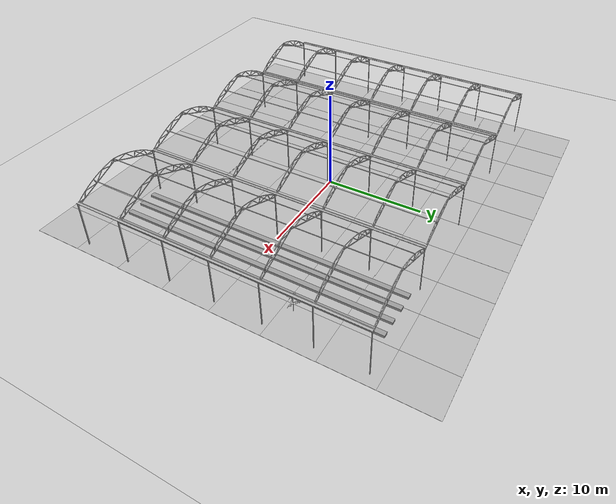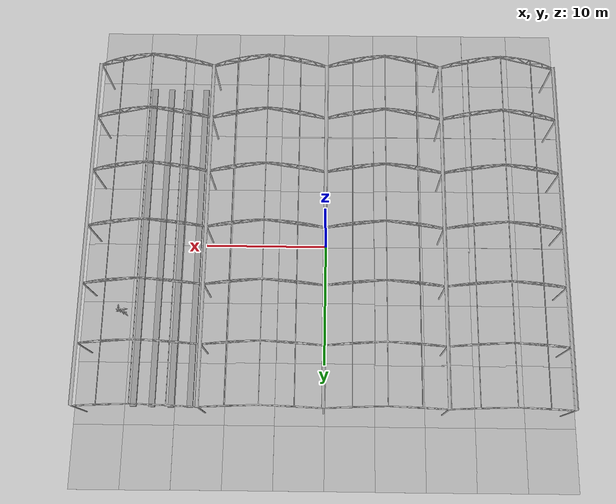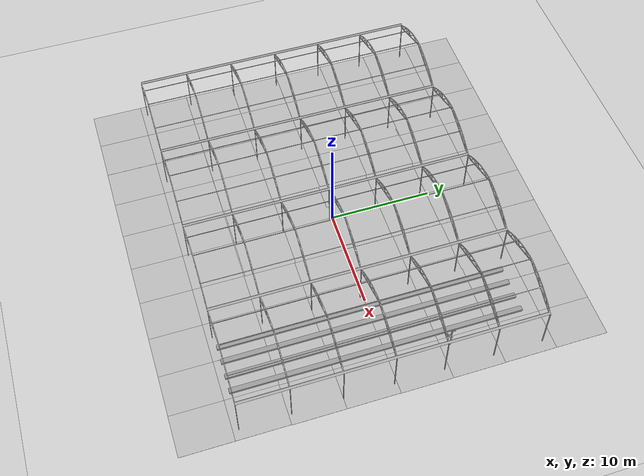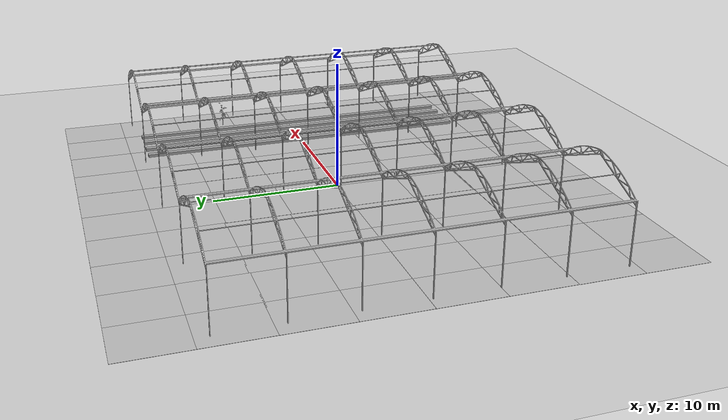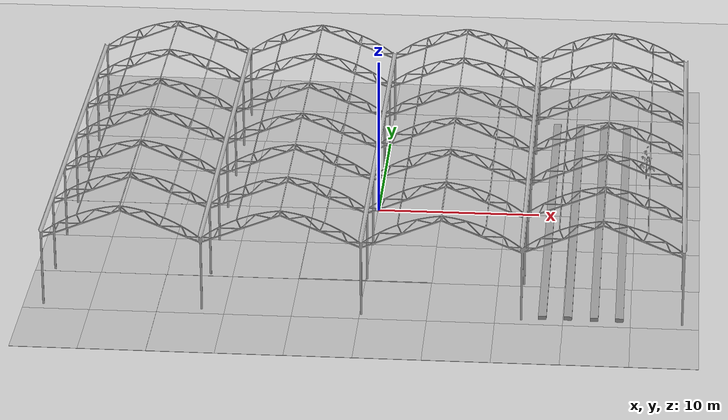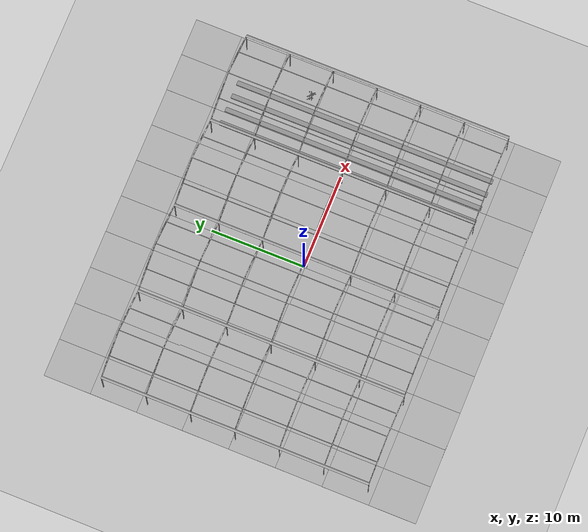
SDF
<sdf version="1.6">
 <world name="default">
  <model name="ground_plane">
   <static>1</static>
   <link name="link">
    <collision name="collision">
     <geometry><plane><normal>0 0 1</normal><size>100 100</size></plane></geometry>
     <surface>
      <contact><collide_bitmask>65535</collide_bitmask></contact>
      <friction><ode><mu>100</mu><mu2>50</mu2></ode></friction>
     </surface>
    </collision>
    <visual name="visual">
     <cast_shadows>0</cast_shadows>
     <geometry><plane><normal>0 0 1</normal><size>100 100</size></plane></geometry>
     <material>
      <script><uri>file://media/materials/scripts/gazebo.material</uri><name>Gazebo/Grey</name></script>
     </material>
    </visual>
   </link>
  </model>
  <model name="greenhouse">
   <static>1</static>
   <link name="link">
    <collision name="collision">
     <geometry>
      <mesh><scale>0.05 0.05 0.05</scale><uri>model://greenhouse/meshes/greenhouse.dae</uri></mesh>
     </geometry>
    </collision>
    <visual name="visual">
     <geometry>
      <mesh><scale>0.03 0.03 0.03</scale><uri>model://greenhouse/meshes/greenhouse.dae</uri></mesh>
     </geometry>
    </visual>
   </link>
   <pose>-24.6321 -23.8938 0 0 -0 0</pose>
  </model>
  <model name="mud_box_2">
   <static>1</static>
   <link name="link">
    <collision name="collision"><geometry><box><size>8 10 0.02</size></box></geometry></collision>
    <visual name="visual_1">
     <pose>-2 2.5 0 0 -0 0</pose>
     <cast_shadows>0</cast_shadows>
     <geometry><box><size>4 5 0.02</size></box></geometry>
     <material>
      <script>
       <uri>model://mud_box/materials/scripts</uri>
       <uri>model://mud_box/materials/textures</uri>
       <name>vrc/mud</name>
      </script>
     </material>
    </visual>
    <visual name="visual_2">
     <pose>2 2.5 0 0 -0 0</pose>
     <cast_shadows>0</cast_shadows>
     <geometry><box><size>4 5 0.02</size></box></geometry>
     <material>
      <script>
       <uri>model://mud_box/materials/scripts</uri>
       <uri>model://mud_box/materials/textures</uri>
       <name>vrc/mud</name>
      </script>
     </material>
    </visual>
    <visual name="visual_3">
     <pose>2 -2.5 0 0 -0 0</pose>
     <cast_shadows>0</cast_shadows>
     <geometry><box><size>4 5 0.02</size></box></geometry>
     <material>
      <script>
       <uri>model://mud_box/materials/scripts</uri>
       <uri>model://mud_box/materials/textures</uri>
       <name>vrc/mud</name>
      </script>
     </material>
    </visual>
    <visual name="visual_4">
     <pose>-2 -2.5 0 0 -0 0</pose>
     <cast_shadows>0</cast_shadows>
     <geometry><box><size>4 5 0.02</size></box></geometry>
     <material>
      <script>
       <uri>model://mud_box/materials/scripts</uri>
       <uri>model://mud_box/materials/textures</uri>
       <name>vrc/mud</name>
      </script>
     </material>
    </visual>
   </link>
   <pose>15.95 14.8768 0 0 -0 0</pose>
  </model>
  <model name="mud_box_2_clone">
   <static>1</static>
   <link name="link">
    <collision name="collision"><geometry><box><size>8 10 0.02</size></box></geometry></collision>
    <visual name="visual_1">
     <pose>-2 2.5 0 0 -0 0</pose>
     <cast_shadows>0</cast_shadows>
     <geometry><box><size>4 5 0.02</size></box></geometry>
     <material>
      <script>
       <uri>model://mud_box/materials/scripts</uri>
       <uri>model://mud_box/materials/textures</uri>
       <name>vrc/mud</name>
      </script>
     </material>
    </visual>
    <visual name="visual_2">
     <pose>2 2.5 0 0 -0 0</pose>
     <cast_shadows>0</cast_shadows>
     <geometry><box><size>4 5 0.02</size></box></geometry>
     <material>
      <script>
       <uri>model://mud_box/materials/scripts</uri>
       <uri>model://mud_box/materials/textures</uri>
       <name>vrc/mud</name>
      </script>
     </material>
    </visual>
    <visual name="visual_3">
     <pose>2 -2.5 0 0 -0 0</pose>
     <cast_shadows>0</cast_shadows>
     <geometry><box><size>4 5 0.02</size></box></geometry>
     <material>
      <script>
       <uri>model://mud_box/materials/scripts</uri>
       <uri>model://mud_box/materials/textures</uri>
       <name>vrc/mud</name>
      </script>
     </material>
    </visual>
    <visual name="visual_4">
     <pose>-2 -2.5 0 0 -0 0</pose>
     <cast_shadows>0</cast_shadows>
     <geometry><box><size>4 5 0.02</size></box></geometry>
     <material>
      <script>
       <uri>model://mud_box/materials/scripts</uri>
       <uri>model://mud_box/materials/textures</uri>
       <name>vrc/mud</name>
      </script>
     </material>
    </visual>
   </link>
   <pose>7.94862 14.8561 0 0 -0 0</pose>
  </model>
  <model name="mud_box_2_clone_0">
   <static>1</static>
   <link name="link">
    <collision name="collision"><geometry><box><size>8 10 0.02</size></box></geometry></collision>
    <visual name="visual_1">
     <pose>-2 2.5 0 0 -0 0</pose>
     <cast_shadows>0</cast_shadows>
     <geometry><box><size>4 5 0.02</size></box></geometry>
     <material>
      <script>
       <uri>model://mud_box/materials/scripts</uri>
       <uri>model://mud_box/materials/textures</uri>
       <name>vrc/mud</name>
      </script>
     </material>
    </visual>
    <visual name="visual_2">
     <pose>2 2.5 0 0 -0 0</pose>
     <cast_shadows>0</cast_shadows>
     <geometry><box><size>4 5 0.02</size></box></geometry>
     <material>
      <script>
       <uri>model://mud_box/materials/scripts</uri>
       <uri>model://mud_box/materials/textures</uri>
       <name>vrc/mud</name>
      </script>
     </material>
    </visual>
    <visual name="visual_3">
     <pose>2 -2.5 0 0 -0 0</pose>
     <cast_shadows>0</cast_shadows>
     <geometry><box><size>4 5 0.02</size></box></geometry>
     <material>
      <script>
       <uri>model://mud_box/materials/scripts</uri>
       <uri>model://mud_box/materials/textures</uri>
       <name>vrc/mud</name>
      </script>
     </material>
    </visual>
    <visual name="visual_4">
     <pose>-2 -2.5 0 0 -0 0</pose>
     <cast_shadows>0</cast_shadows>
     <geometry><box><size>4 5 0.02</size></box></geometry>
     <material>
      <script>
       <uri>model://mud_box/materials/scripts</uri>
       <uri>model://mud_box/materials/textures</uri>
       <name>vrc/mud</name>
      </script>
     </material>
    </visual>
   </link>
   <pose>-0.053733 14.862 0 0 -0 0</pose>
  </model>
  <model name="mud_box_2_clone_1">
   <static>1</static>
   <link name="link">
    <collision name="collision"><geometry><box><size>8 10 0.02</size></box></geometry></collision>
    <visual name="visual_1">
     <pose>-2 2.5 0 0 -0 0</pose>
     <cast_shadows>0</cast_shadows>
     <geometry><box><size>4 5 0.02</size></box></geometry>
     <material>
      <script>
       <uri>model://mud_box/materials/scripts</uri>
       <uri>model://mud_box/materials/textures</uri>
       <name>vrc/mud</name>
      </script>
     </material>
    </visual>
    <visual name="visual_2">
     <pose>2 2.5 0 0 -0 0</pose>
     <cast_shadows>0</cast_shadows>
     <geometry><box><size>4 5 0.02</size></box></geometry>
     <material>
      <script>
       <uri>model://mud_box/materials/scripts</uri>
       <uri>model://mud_box/materials/textures</uri>
       <name>vrc/mud</name>
      </script>
     </material>
    </visual>
    <visual name="visual_3">
     <pose>2 -2.5 0 0 -0 0</pose>
     <cast_shadows>0</cast_shadows>
     <geometry><box><size>4 5 0.02</size></box></geometry>
     <material>
      <script>
       <uri>model://mud_box/materials/scripts</uri>
       <uri>model://mud_box/materials/textures</uri>
       <name>vrc/mud</name>
      </script>
     </material>
    </visual>
    <visual name="visual_4">
     <pose>-2 -2.5 0 0 -0 0</pose>
     <cast_shadows>0</cast_shadows>
     <geometry><box><size>4 5 0.02</size></box></geometry>
     <material>
      <script>
       <uri>model://mud_box/materials/scripts</uri>
       <uri>model://mud_box/materials/textures</uri>
       <name>vrc/mud</name>
      </script>
     </material>
    </visual>
   </link>
   <pose>-8.0478 14.8839 0 0 -0 0</pose>
  </model>
  <model name="mud_box_2_clone_2">
   <static>1</static>
   <link name="link">
    <collision name="collision"><geometry><box><size>8 10 0.02</size></box></geometry></collision>
    <visual name="visual_1">
     <pose>-2 2.5 0 0 -0 0</pose>
     <cast_shadows>0</cast_shadows>
     <geometry><box><size>4 5 0.02</size></box></geometry>
     <material>
      <script>
       <uri>model://mud_box/materials/scripts</uri>
       <uri>model://mud_box/materials/textures</uri>
       <name>vrc/mud</name>
      </script>
     </material>
    </visual>
    <visual name="visual_2">
     <pose>2 2.5 0 0 -0 0</pose>
     <cast_shadows>0</cast_shadows>
     <geometry><box><size>4 5 0.02</size></box></geometry>
     <material>
      <script>
       <uri>model://mud_box/materials/scripts</uri>
       <uri>model://mud_box/materials/textures</uri>
       <name>vrc/mud</name>
      </script>
     </material>
    </visual>
    <visual name="visual_3">
     <pose>2 -2.5 0 0 -0 0</pose>
     <cast_shadows>0</cast_shadows>
     <geometry><box><size>4 5 0.02</size></box></geometry>
     <material>
      <script>
       <uri>model://mud_box/materials/scripts</uri>
       <uri>model://mud_box/materials/textures</uri>
       <name>vrc/mud</name>
      </script>
     </material>
    </visual>
    <visual name="visual_4">
     <pose>-2 -2.5 0 0 -0 0</pose>
     <cast_shadows>0</cast_shadows>
     <geometry><box><size>4 5 0.02</size></box></geometry>
     <material>
      <script>
       <uri>model://mud_box/materials/scripts</uri>
       <uri>model://mud_box/materials/textures</uri>
       <name>vrc/mud</name>
      </script>
     </material>
    </visual>
   </link>
   <pose>-16.0172 14.8764 0 0 -0 0</pose>
  </model>
  <model name="mud_box_2_clone_3">
   <static>1</static>
   <link name="link">
    <collision name="collision"><geometry><box><size>8 10 0.02</size></box></geometry></collision>
    <visual name="visual_1">
     <pose>-2 2.5 0 0 -0 0</pose>
     <cast_shadows>0</cast_shadows>
     <geometry><box><size>4 5 0.02</size></box></geometry>
     <material>
      <script>
       <uri>model://mud_box/materials/scripts</uri>
       <uri>model://mud_box/materials/textures</uri>
       <name>vrc/mud</name>
      </script>
     </material>
    </visual>
    <visual name="visual_2">
     <pose>2 2.5 0 0 -0 0</pose>
     <cast_shadows>0</cast_shadows>
     <geometry><box><size>4 5 0.02</size></box></geometry>
     <material>
      <script>
       <uri>model://mud_box/materials/scripts</uri>
       <uri>model://mud_box/materials/textures</uri>
       <name>vrc/mud</name>
      </script>
     </material>
    </visual>
    <visual name="visual_3">
     <pose>2 -2.5 0 0 -0 0</pose>
     <cast_shadows>0</cast_shadows>
     <geometry><box><size>4 5 0.02</size></box></geometry>
     <material>
      <script>
       <uri>model://mud_box/materials/scripts</uri>
       <uri>model://mud_box/materials/textures</uri>
       <name>vrc/mud</name>
      </script>
     </material>
    </visual>
    <visual name="visual_4">
     <pose>-2 -2.5 0 0 -0 0</pose>
     <cast_shadows>0</cast_shadows>
     <geometry><box><size>4 5 0.02</size></box></geometry>
     <material>
      <script>
       <uri>model://mud_box/materials/scripts</uri>
       <uri>model://mud_box/materials/textures</uri>
       <name>vrc/mud</name>
      </script>
     </material>
    </visual>
   </link>
   <pose>15.9717 4.88727 0 0 -0 0</pose>
  </model>
  <model name="mud_box_2_clone_4">
   <static>1</static>
   <link name="link">
    <collision name="collision"><geometry><box><size>8 10 0.02</size></box></geometry></collision>
    <visual name="visual_1">
     <pose>-2 2.5 0 0 -0 0</pose>
     <cast_shadows>0</cast_shadows>
     <geometry><box><size>4 5 0.02</size></box></geometry>
     <material>
      <script>
       <uri>model://mud_box/materials/scripts</uri>
       <uri>model://mud_box/materials/textures</uri>
       <name>vrc/mud</name>
      </script>
     </material>
    </visual>
    <visual name="visual_2">
     <pose>2 2.5 0 0 -0 0</pose>
     <cast_shadows>0</cast_shadows>
     <geometry><box><size>4 5 0.02</size></box></geometry>
     <material>
      <script>
       <uri>model://mud_box/materials/scripts</uri>
       <uri>model://mud_box/materials/textures</uri>
       <name>vrc/mud</name>
      </script>
     </material>
    </visual>
    <visual name="visual_3">
     <pose>2 -2.5 0 0 -0 0</pose>
     <cast_shadows>0</cast_shadows>
     <geometry><box><size>4 5 0.02</size></box></geometry>
     <material>
      <script>
       <uri>model://mud_box/materials/scripts</uri>
       <uri>model://mud_box/materials/textures</uri>
       <name>vrc/mud</name>
      </script>
     </material>
    </visual>
    <visual name="visual_4">
     <pose>-2 -2.5 0 0 -0 0</pose>
     <cast_shadows>0</cast_shadows>
     <geometry><box><size>4 5 0.02</size></box></geometry>
     <material>
      <script>
       <uri>model://mud_box/materials/scripts</uri>
       <uri>model://mud_box/materials/textures</uri>
       <name>vrc/mud</name>
      </script>
     </material>
    </visual>
   </link>
   <pose>15.9437 -5.04402 0 0 -0 0</pose>
  </model>
  <model name="mud_box_2_clone_5">
   <static>1</static>
   <link name="link">
    <collision name="collision"><geometry><box><size>8 10 0.02</size></box></geometry></collision>
    <visual name="visual_1">
     <pose>-2 2.5 0 0 -0 0</pose>
     <cast_shadows>0</cast_shadows>
     <geometry><box><size>4 5 0.02</size></box></geometry>
     <material>
      <script>
       <uri>model://mud_box/materials/scripts</uri>
       <uri>model://mud_box/materials/textures</uri>
       <name>vrc/mud</name>
      </script>
     </material>
    </visual>
    <visual name="visual_2">
     <pose>2 2.5 0 0 -0 0</pose>
     <cast_shadows>0</cast_shadows>
     <geometry><box><size>4 5 0.02</size></box></geometry>
     <material>
      <script>
       <uri>model://mud_box/materials/scripts</uri>
       <uri>model://mud_box/materials/textures</uri>
       <name>vrc/mud</name>
      </script>
     </material>
    </visual>
    <visual name="visual_3">
     <pose>2 -2.5 0 0 -0 0</pose>
     <cast_shadows>0</cast_shadows>
     <geometry><box><size>4 5 0.02</size></box></geometry>
     <material>
      <script>
       <uri>model://mud_box/materials/scripts</uri>
       <uri>model://mud_box/materials/textures</uri>
       <name>vrc/mud</name>
      </script>
     </material>
    </visual>
    <visual name="visual_4">
     <pose>-2 -2.5 0 0 -0 0</pose>
     <cast_shadows>0</cast_shadows>
     <geometry><box><size>4 5 0.02</size></box></geometry>
     <material>
      <script>
       <uri>model://mud_box/materials/scripts</uri>
       <uri>model://mud_box/materials/textures</uri>
       <name>vrc/mud</name>
      </script>
     </material>
    </visual>
   </link>
   <pose>15.9026 -15.0305 0 0 -0 0</pose>
  </model>
  <model name="mud_box_2_clone_6">
   <static>1</static>
   <link name="link">
    <collision name="collision"><geometry><box><size>8 10 0.02</size></box></geometry></collision>
    <visual name="visual_1">
     <pose>-2 2.5 0 0 -0 0</pose>
     <cast_shadows>0</cast_shadows>
     <geometry><box><size>4 5 0.02</size></box></geometry>
     <material>
      <script>
       <uri>model://mud_box/materials/scripts</uri>
       <uri>model://mud_box/materials/textures</uri>
       <name>vrc/mud</name>
      </script>
     </material>
    </visual>
    <visual name="visual_2">
     <pose>2 2.5 0 0 -0 0</pose>
     <cast_shadows>0</cast_shadows>
     <geometry><box><size>4 5 0.02</size></box></geometry>
     <material>
      <script>
       <uri>model://mud_box/materials/scripts</uri>
       <uri>model://mud_box/materials/textures</uri>
       <name>vrc/mud</name>
      </script>
     </material>
    </visual>
    <visual name="visual_3">
     <pose>2 -2.5 0 0 -0 0</pose>
     <cast_shadows>0</cast_shadows>
     <geometry><box><size>4 5 0.02</size></box></geometry>
     <material>
      <script>
       <uri>model://mud_box/materials/scripts</uri>
       <uri>model://mud_box/materials/textures</uri>
       <name>vrc/mud</name>
      </script>
     </material>
    </visual>
    <visual name="visual_4">
     <pose>-2 -2.5 0 0 -0 0</pose>
     <cast_shadows>0</cast_shadows>
     <geometry><box><size>4 5 0.02</size></box></geometry>
     <material>
      <script>
       <uri>model://mud_box/materials/scripts</uri>
       <uri>model://mud_box/materials/textures</uri>
       <name>vrc/mud</name>
      </script>
     </material>
    </visual>
   </link>
   <pose>7.92837 -15.034 0 0 -0 0</pose>
  </model>
  <model name="mud_box_2_clone_7">
   <static>1</static>
   <link name="link">
    <collision name="collision"><geometry><box><size>8 10 0.02</size></box></geometry></collision>
    <visual name="visual_1">
     <pose>-2 2.5 0 0 -0 0</pose>
     <cast_shadows>0</cast_shadows>
     <geometry><box><size>4 5 0.02</size></box></geometry>
     <material>
      <script>
       <uri>model://mud_box/materials/scripts</uri>
       <uri>model://mud_box/materials/textures</uri>
       <name>vrc/mud</name>
      </script>
     </material>
    </visual>
    <visual name="visual_2">
     <pose>2 2.5 0 0 -0 0</pose>
     <cast_shadows>0</cast_shadows>
     <geometry><box><size>4 5 0.02</size></box></geometry>
     <material>
      <script>
       <uri>model://mud_box/materials/scripts</uri>
       <uri>model://mud_box/materials/textures</uri>
       <name>vrc/mud</name>
      </script>
     </material>
    </visual>
    <visual name="visual_3">
     <pose>2 -2.5 0 0 -0 0</pose>
     <cast_shadows>0</cast_shadows>
     <geometry><box><size>4 5 0.02</size></box></geometry>
     <material>
      <script>
       <uri>model://mud_box/materials/scripts</uri>
       <uri>model://mud_box/materials/textures</uri>
       <name>vrc/mud</name>
      </script>
     </material>
    </visual>
    <visual name="visual_4">
     <pose>-2 -2.5 0 0 -0 0</pose>
     <cast_shadows>0</cast_shadows>
     <geometry><box><size>4 5 0.02</size></box></geometry>
     <material>
      <script>
       <uri>model://mud_box/materials/scripts</uri>
       <uri>model://mud_box/materials/textures</uri>
       <name>vrc/mud</name>
      </script>
     </material>
    </visual>
   </link>
   <pose>-0.060925 -15.032 0 0 -0 0</pose>
  </model>
  <model name="mud_box_2_clone_8">
   <static>1</static>
   <link name="link">
    <collision name="collision"><geometry><box><size>8 10 0.02</size></box></geometry></collision>
    <visual name="visual_1">
     <pose>-2 2.5 0 0 -0 0</pose>
     <cast_shadows>0</cast_shadows>
     <geometry><box><size>4 5 0.02</size></box></geometry>
     <material>
      <script>
       <uri>model://mud_box/materials/scripts</uri>
       <uri>model://mud_box/materials/textures</uri>
       <name>vrc/mud</name>
      </script>
     </material>
    </visual>
    <visual name="visual_2">
     <pose>2 2.5 0 0 -0 0</pose>
     <cast_shadows>0</cast_shadows>
     <geometry><box><size>4 5 0.02</size></box></geometry>
     <material>
      <script>
       <uri>model://mud_box/materials/scripts</uri>
       <uri>model://mud_box/materials/textures</uri>
       <name>vrc/mud</name>
      </script>
     </material>
    </visual>
    <visual name="visual_3">
     <pose>2 -2.5 0 0 -0 0</pose>
     <cast_shadows>0</cast_shadows>
     <geometry><box><size>4 5 0.02</size></box></geometry>
     <material>
      <script>
       <uri>model://mud_box/materials/scripts</uri>
       <uri>model://mud_box/materials/textures</uri>
       <name>vrc/mud</name>
      </script>
     </material>
    </visual>
    <visual name="visual_4">
     <pose>-2 -2.5 0 0 -0 0</pose>
     <cast_shadows>0</cast_shadows>
     <geometry><box><size>4 5 0.02</size></box></geometry>
     <material>
      <script>
       <uri>model://mud_box/materials/scripts</uri>
       <uri>model://mud_box/materials/textures</uri>
       <name>vrc/mud</name>
      </script>
     </material>
    </visual>
   </link>
   <pose>-8.05527 -15.0417 0 0 -0 0</pose>
  </model>
  <model name="mud_box_2_clone_9">
   <static>1</static>
   <link name="link">
    <collision name="collision"><geometry><box><size>8 10 0.02</size></box></geometry></collision>
    <visual name="visual_1">
     <pose>-2 2.5 0 0 -0 0</pose>
     <cast_shadows>0</cast_shadows>
     <geometry><box><size>4 5 0.02</size></box></geometry>
     <material>
      <script>
       <uri>model://mud_box/materials/scripts</uri>
       <uri>model://mud_box/materials/textures</uri>
       <name>vrc/mud</name>
      </script>
     </material>
    </visual>
    <visual name="visual_2">
     <pose>2 2.5 0 0 -0 0</pose>
     <cast_shadows>0</cast_shadows>
     <geometry><box><size>4 5 0.02</size></box></geometry>
     <material>
      <script>
       <uri>model://mud_box/materials/scripts</uri>
       <uri>model://mud_box/materials/textures</uri>
       <name>vrc/mud</name>
      </script>
     </material>
    </visual>
    <visual name="visual_3">
     <pose>2 -2.5 0 0 -0 0</pose>
     <cast_shadows>0</cast_shadows>
     <geometry><box><size>4 5 0.02</size></box></geometry>
     <material>
      <script>
       <uri>model://mud_box/materials/scripts</uri>
       <uri>model://mud_box/materials/textures</uri>
       <name>vrc/mud</name>
      </script>
     </material>
    </visual>
    <visual name="visual_4">
     <pose>-2 -2.5 0 0 -0 0</pose>
     <cast_shadows>0</cast_shadows>
     <geometry><box><size>4 5 0.02</size></box></geometry>
     <material>
      <script>
       <uri>model://mud_box/materials/scripts</uri>
       <uri>model://mud_box/materials/textures</uri>
       <name>vrc/mud</name>
      </script>
     </material>
    </visual>
   </link>
   <pose>-16.0602 -15.033 0 0 -0 0</pose>
  </model>
  <model name="mud_box_2_clone_10">
   <static>1</static>
   <link name="link">
    <collision name="collision"><geometry><box><size>8 10 0.02</size></box></geometry></collision>
    <visual name="visual_1">
     <pose>-2 2.5 0 0 -0 0</pose>
     <cast_shadows>0</cast_shadows>
     <geometry><box><size>4 5 0.02</size></box></geometry>
     <material>
      <script>
       <uri>model://mud_box/materials/scripts</uri>
       <uri>model://mud_box/materials/textures</uri>
       <name>vrc/mud</name>
      </script>
     </material>
    </visual>
    <visual name="visual_2">
     <pose>2 2.5 0 0 -0 0</pose>
     <cast_shadows>0</cast_shadows>
     <geometry><box><size>4 5 0.02</size></box></geometry>
     <material>
      <script>
       <uri>model://mud_box/materials/scripts</uri>
       <uri>model://mud_box/materials/textures</uri>
       <name>vrc/mud</name>
      </script>
     </material>
    </visual>
    <visual name="visual_3">
     <pose>2 -2.5 0 0 -0 0</pose>
     <cast_shadows>0</cast_shadows>
     <geometry><box><size>4 5 0.02</size></box></geometry>
     <material>
      <script>
       <uri>model://mud_box/materials/scripts</uri>
       <uri>model://mud_box/materials/textures</uri>
       <name>vrc/mud</name>
      </script>
     </material>
    </visual>
    <visual name="visual_4">
     <pose>-2 -2.5 0 0 -0 0</pose>
     <cast_shadows>0</cast_shadows>
     <geometry><box><size>4 5 0.02</size></box></geometry>
     <material>
      <script>
       <uri>model://mud_box/materials/scripts</uri>
       <uri>model://mud_box/materials/textures</uri>
       <name>vrc/mud</name>
      </script>
     </material>
    </visual>
   </link>
   <pose>-16.037 -5.02979 0 0 -0 0</pose>
  </model>
  <model name="mud_box_2_clone_11">
   <static>1</static>
   <link name="link">
    <collision name="collision"><geometry><box><size>8 10 0.02</size></box></geometry></collision>
    <visual name="visual_1">
     <pose>-2 2.5 0 0 -0 0</pose>
     <cast_shadows>0</cast_shadows>
     <geometry><box><size>4 5 0.02</size></box></geometry>
     <material>
      <script>
       <uri>model://mud_box/materials/scripts</uri>
       <uri>model://mud_box/materials/textures</uri>
       <name>vrc/mud</name>
      </script>
     </material>
    </visual>
    <visual name="visual_2">
     <pose>2 2.5 0 0 -0 0</pose>
     <cast_shadows>0</cast_shadows>
     <geometry><box><size>4 5 0.02</size></box></geometry>
     <material>
      <script>
       <uri>model://mud_box/materials/scripts</uri>
       <uri>model://mud_box/materials/textures</uri>
       <name>vrc/mud</name>
      </script>
     </material>
    </visual>
    <visual name="visual_3">
     <pose>2 -2.5 0 0 -0 0</pose>
     <cast_shadows>0</cast_shadows>
     <geometry><box><size>4 5 0.02</size></box></geometry>
     <material>
      <script>
       <uri>model://mud_box/materials/scripts</uri>
       <uri>model://mud_box/materials/textures</uri>
       <name>vrc/mud</name>
      </script>
     </material>
    </visual>
    <visual name="visual_4">
     <pose>-2 -2.5 0 0 -0 0</pose>
     <cast_shadows>0</cast_shadows>
     <geometry><box><size>4 5 0.02</size></box></geometry>
     <material>
      <script>
       <uri>model://mud_box/materials/scripts</uri>
       <uri>model://mud_box/materials/textures</uri>
       <name>vrc/mud</name>
      </script>
     </material>
    </visual>
   </link>
   <pose>-16.0272 4.97532 0 0 -0 0</pose>
  </model>
  <model name="mud_box_2_clone_12">
   <static>1</static>
   <link name="link">
    <collision name="collision"><geometry><box><size>8 10 0.02</size></box></geometry></collision>
    <visual name="visual_1">
     <pose>-2 2.5 0 0 -0 0</pose>
     <cast_shadows>0</cast_shadows>
     <geometry><box><size>4 5 0.02</size></box></geometry>
     <material>
      <script>
       <uri>model://mud_box/materials/scripts</uri>
       <uri>model://mud_box/materials/textures</uri>
       <name>vrc/mud</name>
      </script>
     </material>
    </visual>
    <visual name="visual_2">
     <pose>2 2.5 0 0 -0 0</pose>
     <cast_shadows>0</cast_shadows>
     <geometry><box><size>4 5 0.02</size></box></geometry>
     <material>
      <script>
       <uri>model://mud_box/materials/scripts</uri>
       <uri>model://mud_box/materials/textures</uri>
       <name>vrc/mud</name>
      </script>
     </material>
    </visual>
    <visual name="visual_3">
     <pose>2 -2.5 0 0 -0 0</pose>
     <cast_shadows>0</cast_shadows>
     <geometry><box><size>4 5 0.02</size></box></geometry>
     <material>
      <script>
       <uri>model://mud_box/materials/scripts</uri>
       <uri>model://mud_box/materials/textures</uri>
       <name>vrc/mud</name>
      </script>
     </material>
    </visual>
    <visual name="visual_4">
     <pose>-2 -2.5 0 0 -0 0</pose>
     <cast_shadows>0</cast_shadows>
     <geometry><box><size>4 5 0.02</size></box></geometry>
     <material>
      <script>
       <uri>model://mud_box/materials/scripts</uri>
       <uri>model://mud_box/materials/textures</uri>
       <name>vrc/mud</name>
      </script>
     </material>
    </visual>
   </link>
   <pose>-8.1226 4.98139 0 0 -0 0</pose>
  </model>
  <model name="mud_box_2_clone_13">
   <static>1</static>
   <link name="link">
    <collision name="collision"><geometry><box><size>8 10 0.02</size></box></geometry></collision>
    <visual name="visual_1">
     <pose>-2 2.5 0 0 -0 0</pose>
     <cast_shadows>0</cast_shadows>
     <geometry><box><size>4 5 0.02</size></box></geometry>
     <material>
      <script>
       <uri>model://mud_box/materials/scripts</uri>
       <uri>model://mud_box/materials/textures</uri>
       <name>vrc/mud</name>
      </script>
     </material>
    </visual>
    <visual name="visual_2">
     <pose>2 2.5 0 0 -0 0</pose>
     <cast_shadows>0</cast_shadows>
     <geometry><box><size>4 5 0.02</size></box></geometry>
     <material>
      <script>
       <uri>model://mud_box/materials/scripts</uri>
       <uri>model://mud_box/materials/textures</uri>
       <name>vrc/mud</name>
      </script>
     </material>
    </visual>
    <visual name="visual_3">
     <pose>2 -2.5 0 0 -0 0</pose>
     <cast_shadows>0</cast_shadows>
     <geometry><box><size>4 5 0.02</size></box></geometry>
     <material>
      <script>
       <uri>model://mud_box/materials/scripts</uri>
       <uri>model://mud_box/materials/textures</uri>
       <name>vrc/mud</name>
      </script>
     </material>
    </visual>
    <visual name="visual_4">
     <pose>-2 -2.5 0 0 -0 0</pose>
     <cast_shadows>0</cast_shadows>
     <geometry><box><size>4 5 0.02</size></box></geometry>
     <material>
      <script>
       <uri>model://mud_box/materials/scripts</uri>
       <uri>model://mud_box/materials/textures</uri>
       <name>vrc/mud</name>
      </script>
     </material>
    </visual>
   </link>
   <pose>-8.07337 -5.01851 0 0 -0 0</pose>
  </model>
  <model name="mud_box_2_clone_14">
   <static>1</static>
   <link name="link">
    <collision name="collision"><geometry><box><size>8 10 0.02</size></box></geometry></collision>
    <visual name="visual_1">
     <pose>-2 2.5 0 0 -0 0</pose>
     <cast_shadows>0</cast_shadows>
     <geometry><box><size>4 5 0.02</size></box></geometry>
     <material>
      <script>
       <uri>model://mud_box/materials/scripts</uri>
       <uri>model://mud_box/materials/textures</uri>
       <name>vrc/mud</name>
      </script>
     </material>
    </visual>
    <visual name="visual_2">
     <pose>2 2.5 0 0 -0 0</pose>
     <cast_shadows>0</cast_shadows>
     <geometry><box><size>4 5 0.02</size></box></geometry>
     <material>
      <script>
       <uri>model://mud_box/materials/scripts</uri>
       <uri>model://mud_box/materials/textures</uri>
       <name>vrc/mud</name>
      </script>
     </material>
    </visual>
    <visual name="visual_3">
     <pose>2 -2.5 0 0 -0 0</pose>
     <cast_shadows>0</cast_shadows>
     <geometry><box><size>4 5 0.02</size></box></geometry>
     <material>
      <script>
       <uri>model://mud_box/materials/scripts</uri>
       <uri>model://mud_box/materials/textures</uri>
       <name>vrc/mud</name>
      </script>
     </material>
    </visual>
    <visual name="visual_4">
     <pose>-2 -2.5 0 0 -0 0</pose>
     <cast_shadows>0</cast_shadows>
     <geometry><box><size>4 5 0.02</size></box></geometry>
     <material>
      <script>
       <uri>model://mud_box/materials/scripts</uri>
       <uri>model://mud_box/materials/textures</uri>
       <name>vrc/mud</name>
      </script>
     </material>
    </visual>
   </link>
   <pose>7.92131 -5.03606 0 0 -0 0</pose>
  </model>
  <model name="mud_box_2_clone_15">
   <static>1</static>
   <link name="link">
    <collision name="collision"><geometry><box><size>8 10 0.02</size></box></geometry></collision>
    <visual name="visual_1">
     <pose>-2 2.5 0 0 -0 0</pose>
     <cast_shadows>0</cast_shadows>
     <geometry><box><size>4 5 0.02</size></box></geometry>
     <material>
      <script>
       <uri>model://mud_box/materials/scripts</uri>
       <uri>model://mud_box/materials/textures</uri>
       <name>vrc/mud</name>
      </script>
     </material>
    </visual>
    <visual name="visual_2">
     <pose>2 2.5 0 0 -0 0</pose>
     <cast_shadows>0</cast_shadows>
     <geometry><box><size>4 5 0.02</size></box></geometry>
     <material>
      <script>
       <uri>model://mud_box/materials/scripts</uri>
       <uri>model://mud_box/materials/textures</uri>
       <name>vrc/mud</name>
      </script>
     </material>
    </visual>
    <visual name="visual_3">
     <pose>2 -2.5 0 0 -0 0</pose>
     <cast_shadows>0</cast_shadows>
     <geometry><box><size>4 5 0.02</size></box></geometry>
     <material>
      <script>
       <uri>model://mud_box/materials/scripts</uri>
       <uri>model://mud_box/materials/textures</uri>
       <name>vrc/mud</name>
      </script>
     </material>
    </visual>
    <visual name="visual_4">
     <pose>-2 -2.5 0 0 -0 0</pose>
     <cast_shadows>0</cast_shadows>
     <geometry><box><size>4 5 0.02</size></box></geometry>
     <material>
      <script>
       <uri>model://mud_box/materials/scripts</uri>
       <uri>model://mud_box/materials/textures</uri>
       <name>vrc/mud</name>
      </script>
     </material>
    </visual>
   </link>
   <pose>-0.044632 -4.93319 0 0 -0 0</pose>
  </model>
  <model name="mud_box_2_clone_16">
   <static>1</static>
   <link name="link">
    <collision name="collision"><geometry><box><size>8 10 0.02</size></box></geometry></collision>
    <visual name="visual_1">
     <pose>-2 2.5 0 0 -0 0</pose>
     <cast_shadows>0</cast_shadows>
     <geometry><box><size>4 5 0.02</size></box></geometry>
     <material>
      <script>
       <uri>model://mud_box/materials/scripts</uri>
       <uri>model://mud_box/materials/textures</uri>
       <name>vrc/mud</name>
      </script>
     </material>
    </visual>
    <visual name="visual_2">
     <pose>2 2.5 0 0 -0 0</pose>
     <cast_shadows>0</cast_shadows>
     <geometry><box><size>4 5 0.02</size></box></geometry>
     <material>
      <script>
       <uri>model://mud_box/materials/scripts</uri>
       <uri>model://mud_box/materials/textures</uri>
       <name>vrc/mud</name>
      </script>
     </material>
    </visual>
    <visual name="visual_3">
     <pose>2 -2.5 0 0 -0 0</pose>
     <cast_shadows>0</cast_shadows>
     <geometry><box><size>4 5 0.02</size></box></geometry>
     <material>
      <script>
       <uri>model://mud_box/materials/scripts</uri>
       <uri>model://mud_box/materials/textures</uri>
       <name>vrc/mud</name>
      </script>
     </material>
    </visual>
    <visual name="visual_4">
     <pose>-2 -2.5 0 0 -0 0</pose>
     <cast_shadows>0</cast_shadows>
     <geometry><box><size>4 5 0.02</size></box></geometry>
     <material>
      <script>
       <uri>model://mud_box/materials/scripts</uri>
       <uri>model://mud_box/materials/textures</uri>
       <name>vrc/mud</name>
      </script>
     </material>
    </visual>
   </link>
   <pose>7.93489 4.92736 0 0 -0 0</pose>
  </model>
  <model name="mud_box_2_clone_17">
   <static>1</static>
   <link name="link">
    <collision name="collision"><geometry><box><size>8 10 0.02</size></box></geometry></collision>
    <visual name="visual_1">
     <pose>-2 2.5 0 0 -0 0</pose>
     <cast_shadows>0</cast_shadows>
     <geometry><box><size>4 5 0.02</size></box></geometry>
     <material>
      <script>
       <uri>model://mud_box/materials/scripts</uri>
       <uri>model://mud_box/materials/textures</uri>
       <name>vrc/mud</name>
      </script>
     </material>
    </visual>
    <visual name="visual_2">
     <pose>2 2.5 0 0 -0 0</pose>
     <cast_shadows>0</cast_shadows>
     <geometry><box><size>4 5 0.02</size></box></geometry>
     <material>
      <script>
       <uri>model://mud_box/materials/scripts</uri>
       <uri>model://mud_box/materials/textures</uri>
       <name>vrc/mud</name>
      </script>
     </material>
    </visual>
    <visual name="visual_3">
     <pose>2 -2.5 0 0 -0 0</pose>
     <cast_shadows>0</cast_shadows>
     <geometry><box><size>4 5 0.02</size></box></geometry>
     <material>
      <script>
       <uri>model://mud_box/materials/scripts</uri>
       <uri>model://mud_box/materials/textures</uri>
       <name>vrc/mud</name>
      </script>
     </material>
    </visual>
    <visual name="visual_4">
     <pose>-2 -2.5 0 0 -0 0</pose>
     <cast_shadows>0</cast_shadows>
     <geometry><box><size>4 5 0.02</size></box></geometry>
     <material>
      <script>
       <uri>model://mud_box/materials/scripts</uri>
       <uri>model://mud_box/materials/textures</uri>
       <name>vrc/mud</name>
      </script>
     </material>
    </visual>
   </link>
   <pose>-0.092613 4.86457 0 0 -0 0</pose>
  </model>
  <model name="plant_base_clone_clone_0_clone_0">
   <link name="link">
    <inertial>
     <mass>1</mass>
     <inertia>
      <ixx>0.166667</ixx>
      <ixy>0</ixy>
      <ixz>0</ixz>
      <iyy>0.166667</iyy>
      <iyz>0</iyz>
      <izz>0.166667</izz>
     </inertia>
    </inertial>
    <visual name="visual">
     <geometry><box><size>0.484753 27.8593 0.235695</size></box></geometry>
     <material>
      <script><name>Gazebo/Grey</name><uri>file://media/materials/scripts/gazebo.material</uri></script>
     </material>
    </visual>
    <collision name="collision">
     <geometry><box><size>0.484753 27.8593 0.235695</size></box></geometry>
     <surface>
      <friction>
       <ode><mu>1</mu><mu2>1</mu2><fdir1>0 0 0</fdir1><slip1>0</slip1><slip2>0</slip2></ode>
       <torsional>
        <coefficient>1</coefficient>
        <patch_radius>0</patch_radius>
        <surface_radius>0</surface_radius>
        <use_patch_radius>1</use_patch_radius>
        <ode><slip>0</slip></ode>
       </torsional>
      </friction>
      <bounce><restitution_coefficient>0</restitution_coefficient><threshold>1e+06</threshold></bounce>
      <contact>
       <collide_without_contact>0</collide_without_contact>
       <collide_without_contact_bitmask>1</collide_without_contact_bitmask>
       <collide_bitmask>1</collide_bitmask>
       <ode>
        <soft_cfm>0</soft_cfm>
        <soft_erp>0.2</soft_erp>
        <kp>1e+13</kp>
        <kd>1</kd>
        <max_vel>0.01</max_vel>
        <min_depth>0</min_depth>
       </ode>
       <bullet>
        <split_impulse>1</split_impulse>
        <split_impulse_penetration_threshold>-0.01</split_impulse_penetration_threshold>
        <soft_cfm>0</soft_cfm>
        <soft_erp>0.2</soft_erp>
        <kp>1e+13</kp>
        <kd>1</kd>
       </bullet>
      </contact>
     </surface>
    </collision>
   </link>
   <static>1</static>
   <pose>15.2546 -0.470641 0.134309 0 -0 0</pose>
  </model>
  <model name="plant_base_clone_clone_0_clone_1">
   <link name="link">
    <inertial>
     <mass>1</mass>
     <inertia>
      <ixx>0.166667</ixx>
      <ixy>0</ixy>
      <ixz>0</ixz>
      <iyy>0.166667</iyy>
      <iyz>0</iyz>
      <izz>0.166667</izz>
     </inertia>
    </inertial>
    <visual name="visual">
     <geometry><box><size>0.484753 27.8593 0.235695</size></box></geometry>
     <material>
      <script><name>Gazebo/Grey</name><uri>file://media/materials/scripts/gazebo.material</uri></script>
     </material>
    </visual>
    <collision name="collision">
     <geometry><box><size>0.484753 27.8593 0.235695</size></box></geometry>
     <surface>
      <friction>
       <ode><mu>1</mu><mu2>1</mu2><fdir1>0 0 0</fdir1><slip1>0</slip1><slip2>0</slip2></ode>
       <torsional>
        <coefficient>1</coefficient>
        <patch_radius>0</patch_radius>
        <surface_radius>0</surface_radius>
        <use_patch_radius>1</use_patch_radius>
        <ode><slip>0</slip></ode>
       </torsional>
      </friction>
      <bounce><restitution_coefficient>0</restitution_coefficient><threshold>1e+06</threshold></bounce>
      <contact>
       <collide_without_contact>0</collide_without_contact>
       <collide_without_contact_bitmask>1</collide_without_contact_bitmask>
       <collide_bitmask>1</collide_bitmask>
       <ode>
        <soft_cfm>0</soft_cfm>
        <soft_erp>0.2</soft_erp>
        <kp>1e+13</kp>
        <kd>1</kd>
        <max_vel>0.01</max_vel>
        <min_depth>0</min_depth>
       </ode>
       <bullet>
        <split_impulse>1</split_impulse>
        <split_impulse_penetration_threshold>-0.01</split_impulse_penetration_threshold>
        <soft_cfm>0</soft_cfm>
        <soft_erp>0.2</soft_erp>
        <kp>1e+13</kp>
        <kd>1</kd>
       </bullet>
      </contact>
     </surface>
    </collision>
   </link>
   <static>1</static>
   <pose>13.7762 -0.466755 0.134309 0 -0 0</pose>
  </model>
  <model name="plant_base_clone_clone_0_clone_2">
   <link name="link">
    <inertial>
     <mass>1</mass>
     <inertia>
      <ixx>0.166667</ixx>
      <ixy>0</ixy>
      <ixz>0</ixz>
      <iyy>0.166667</iyy>
      <iyz>0</iyz>
      <izz>0.166667</izz>
     </inertia>
    </inertial>
    <visual name="visual">
     <geometry><box><size>0.484753 27.8593 0.235695</size></box></geometry>
     <material>
      <script><name>Gazebo/Grey</name><uri>file://media/materials/scripts/gazebo.material</uri></script>
     </material>
    </visual>
    <collision name="collision">
     <geometry><box><size>0.484753 27.8593 0.235695</size></box></geometry>
     <surface>
      <friction>
       <ode><mu>1</mu><mu2>1</mu2><fdir1>0 0 0</fdir1><slip1>0</slip1><slip2>0</slip2></ode>
       <torsional>
        <coefficient>1</coefficient>
        <patch_radius>0</patch_radius>
        <surface_radius>0</surface_radius>
        <use_patch_radius>1</use_patch_radius>
        <ode><slip>0</slip></ode>
       </torsional>
      </friction>
      <bounce><restitution_coefficient>0</restitution_coefficient><threshold>1e+06</threshold></bounce>
      <contact>
       <collide_without_contact>0</collide_without_contact>
       <collide_without_contact_bitmask>1</collide_without_contact_bitmask>
       <collide_bitmask>1</collide_bitmask>
       <ode>
        <soft_cfm>0</soft_cfm>
        <soft_erp>0.2</soft_erp>
        <kp>1e+13</kp>
        <kd>1</kd>
        <max_vel>0.01</max_vel>
        <min_depth>0</min_depth>
       </ode>
       <bullet>
        <split_impulse>1</split_impulse>
        <split_impulse_penetration_threshold>-0.01</split_impulse_penetration_threshold>
        <soft_cfm>0</soft_cfm>
        <soft_erp>0.2</soft_erp>
        <kp>1e+13</kp>
        <kd>1</kd>
       </bullet>
      </contact>
     </surface>
    </collision>
   </link>
   <static>1</static>
   <pose>12.2281 -0.427123 0.134309 0 -0 0</pose>
  </model>
  <model name="plant_base_clone_clone_0_clone_3">
   <link name="link">
    <inertial>
     <mass>1</mass>
     <inertia>
      <ixx>0.166667</ixx>
      <ixy>0</ixy>
      <ixz>0</ixz>
      <iyy>0.166667</iyy>
      <iyz>0</iyz>
      <izz>0.166667</izz>
     </inertia>
    </inertial>
    <visual name="visual">
     <geometry><box><size>0.484753 27.8593 0.235695</size></box></geometry>
     <material>
      <script><name>Gazebo/Grey</name><uri>file://media/materials/scripts/gazebo.material</uri></script>
     </material>
    </visual>
    <collision name="collision">
     <geometry><box><size>0.484753 27.8593 0.235695</size></box></geometry>
     <surface>
      <friction>
       <ode><mu>1</mu><mu2>1</mu2><fdir1>0 0 0</fdir1><slip1>0</slip1><slip2>0</slip2></ode>
       <torsional>
        <coefficient>1</coefficient>
        <patch_radius>0</patch_radius>
        <surface_radius>0</surface_radius>
        <use_patch_radius>1</use_patch_radius>
        <ode><slip>0</slip></ode>
       </torsional>
      </friction>
      <bounce><restitution_coefficient>0</restitution_coefficient><threshold>1e+06</threshold></bounce>
      <contact>
       <collide_without_contact>0</collide_without_contact>
       <collide_without_contact_bitmask>1</collide_without_contact_bitmask>
       <collide_bitmask>1</collide_bitmask>
       <ode>
        <soft_cfm>0</soft_cfm>
        <soft_erp>0.2</soft_erp>
        <kp>1e+13</kp>
        <kd>1</kd>
        <max_vel>0.01</max_vel>
        <min_depth>0</min_depth>
       </ode>
       <bullet>
        <split_impulse>1</split_impulse>
        <split_impulse_penetration_threshold>-0.01</split_impulse_penetration_threshold>
        <soft_cfm>0</soft_cfm>
        <soft_erp>0.2</soft_erp>
        <kp>1e+13</kp>
        <kd>1</kd>
       </bullet>
      </contact>
     </surface>
    </collision>
   </link>
   <static>1</static>
   <pose>10.7242 -0.437899 0.134309 0 -0 0</pose>
  </model>
  <model name="tomato_plant_big_22">
   <static>1</static>
   <link name="link">
    <collision name="collision">
     <geometry>
      <mesh><scale>5e-06 5e-06 6e-06</scale><uri>model://tomato_plant_big/meshes/tomato-plant.dae</uri></mesh>
     </geometry>
    </collision>
    <visual name="visual">
     <geometry>
      <mesh><scale>5e-06 5e-06 7e-06</scale><uri>model://tomato_plant_big/meshes/tomato-plant.dae</uri></mesh>
     </geometry>
    </visual>
   </link>
   <pose>16.5972 5.83716 0 0 -0 0</pose>
  </model>
 </world>
</sdf>
